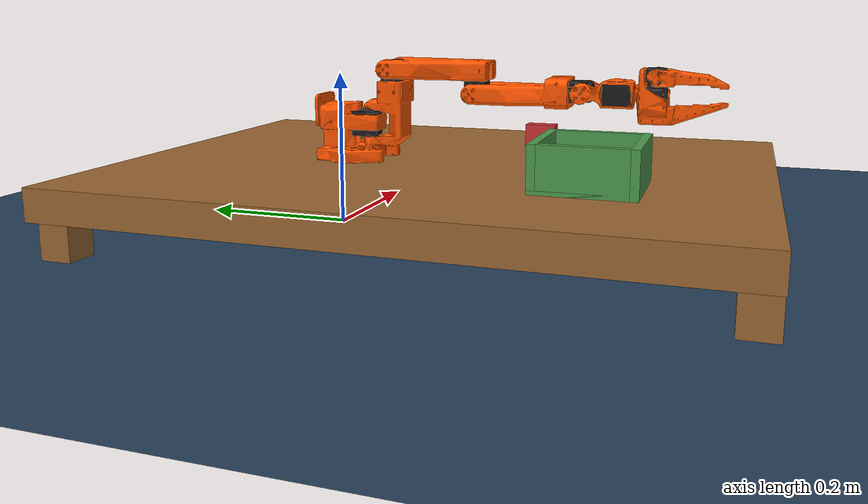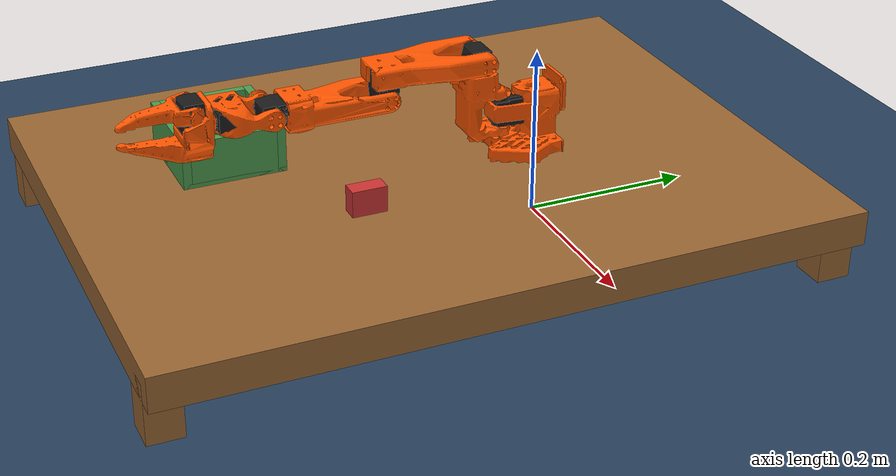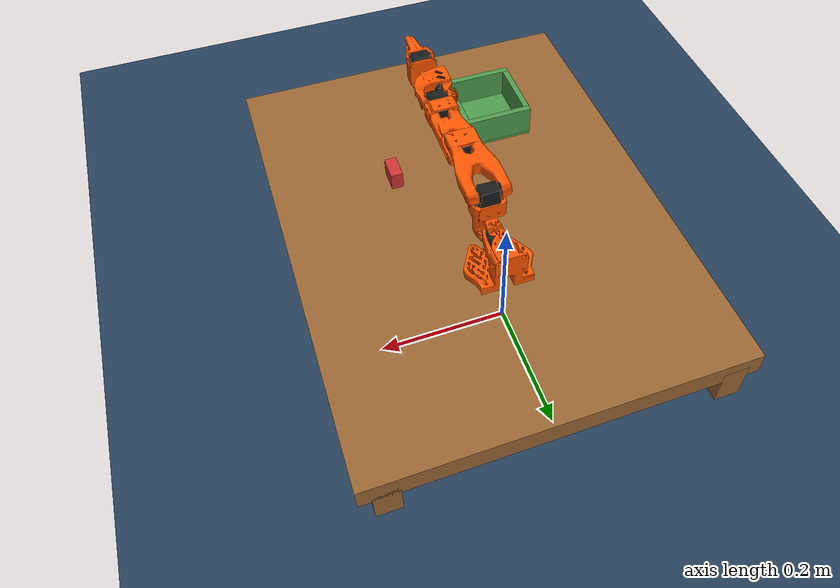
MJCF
<mujoco model="so_arm100 rvt scene">
  <include file="so_arm100.xml"/>

  <statistic center="0 -0.2 0.1" extent="0.4"/>

  <visual>
    <headlight diffuse="0.6 0.6 0.6" ambient="0.3 0.3 0.3" specular="0 0 0"/>
    <rgba haze="0.15 0.25 0.35 1"/>
    <global azimuth="140" elevation="-30"/>
  </visual>

  <asset>
    <texture type="skybox" builtin="gradient" rgb1="0.3 0.5 0.7" rgb2="0 0 0" width="512" height="3072"/>
    <texture type="2d" name="groundplane" builtin="checker" mark="edge" rgb1="0.2 0.3 0.4" rgb2="0.1 0.2 0.3"
      markrgb="0.8 0.8 0.8" width="300" height="300"/>
    <material name="groundplane" texture="groundplane" texuniform="true" texrepeat="5 5" reflectance="0.2"/>

    <material name="table_mat" rgba="0.6 0.4 0.2 1"/>
    <material name="block_mat" rgba="0.8 0.2 0.2 1"/>
    <material name="box_mat" rgba="0.3 0.6 0.3 1"/>
    <material name="target_mat" rgba="0.2 0.2 0.8 0.3"/>
  </asset>

  <worldbody>
    <light pos="0 0 1.5" dir="0 0 -1" directional="true"/>
    <geom name="floor" size="0 0 0.05" type="plane" material="groundplane"/>

    <!-- Workspace center is around (0, -0.25, 0.1). Cameras look at that point. -->
    <!-- RLBench-style cameras: front, left_shoulder, right_shoulder; wrist lives on Fixed_Jaw. -->
    <camera name="front"
            pos="0 -0.85 0.35"
            xyaxes="1 0 0  0 0.45 0.89"
            fovy="45"/>
    <camera name="left_shoulder"
            pos="-0.55 -0.25 0.35"
            xyaxes="0 -1 0  0.4138 0 0.9104"
            fovy="45"/>
    <camera name="right_shoulder"
            pos="0.55 -0.25 0.35"
            xyaxes="0 1 0  -0.4138 0 0.9104"
            fovy="45"/>

    <body name="table" pos="0 0 0">
      <geom name="table_top" type="box" size="0.3 0.4 0.02" pos="0 -0.15 0.07" material="table_mat" mass="10"/>
      <geom name="table_leg1" type="box" size="0.02 0.02 0.035" pos="0.26 -0.53 0.035" material="table_mat"/>
      <geom name="table_leg2" type="box" size="0.02 0.02 0.035" pos="-0.26 -0.53 0.035" material="table_mat"/>
      <geom name="table_leg3" type="box" size="0.02 0.02 0.035" pos="0.26 0.23 0.035" material="table_mat"/>
      <geom name="table_leg4" type="box" size="0.02 0.02 0.035" pos="-0.26 0.23 0.035" material="table_mat"/>
    </body>

    <body name="block" pos="0.1 -0.25 0.115">
      <joint type="free"/>
      <geom name="block_geom" type="box" size="0.01 0.02 0.015" material="block_mat" mass="0.05"
            friction="1 0.005 0.0001" solimp="0.9 0.95 0.001" solref="0.02 1"/>
      <site name="block_site" pos="0 0 0" size="0.005"/>
    </body>

    <body name="box" pos="-0.1 -0.35 0.09">
      <geom name="box_bottom" type="box" size="0.06 0.06 0.005" pos="0 0 0" material="box_mat" mass="0.2"/>
      <geom name="box_wall1" type="box" size="0.06 0.005 0.03" pos="0 0.055 0.025" material="box_mat"/>
      <geom name="box_wall2" type="box" size="0.06 0.005 0.03" pos="0 -0.055 0.025" material="box_mat"/>
      <geom name="box_wall3" type="box" size="0.005 0.05 0.03" pos="0.055 0 0.025" material="box_mat"/>
      <geom name="box_wall4" type="box" size="0.005 0.05 0.03" pos="-0.055 0 0.025" material="box_mat"/>
      <site name="box_center" pos="0 0 0.03" size="0.001" rgba="0 0 0 0"/>
    </body>
  </worldbody>
</mujoco>

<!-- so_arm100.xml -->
<mujoco model="so_arm100">
  <compiler angle="radian" meshdir="assets/"/>

  <option cone="elliptic" impratio="10"/>

  <asset>
    <material name="orange" rgba="1.0 0.331 0.0 1.0" specular="0.1" shininess="0.1"/>
    <material name="black" rgba="0.1 0.1 0.1 1.0" specular="0.1" shininess="0.1"/>

    <mesh name="Base" file="Base.stl"/>
    <mesh name="Base_Motor" file="Base_Motor.stl"/>
    <mesh name="Rotation_Pitch" file="Rotation_Pitch.stl"/>
    <mesh name="Rotation_Pitch_Motor" file="Rotation_Pitch_Motor.stl"/>
    <mesh name="Upper_Arm" file="Upper_Arm.stl"/>
    <mesh name="Upper_Arm_Motor" file="Upper_Arm_Motor.stl"/>
    <mesh name="Lower_Arm" file="Lower_Arm.stl"/>
    <mesh name="Lower_Arm_Motor" file="Lower_Arm_Motor.stl"/>
    <mesh name="Wrist_Pitch_Roll" file="Wrist_Pitch_Roll.stl"/>
    <mesh name="Wrist_Pitch_Roll_Motor" file="Wrist_Pitch_Roll_Motor.stl"/>
    <mesh name="Fixed_Jaw" file="Fixed_Jaw.stl"/>
    <mesh name="Fixed_Jaw_Motor" file="Fixed_Jaw_Motor.stl"/>
    <mesh name="Fixed_Jaw_Collision_1" file="Fixed_Jaw_Collision_1.stl"/>
    <mesh name="Fixed_Jaw_Collision_2" file="Fixed_Jaw_Collision_2.stl"/>
    <mesh name="Moving_Jaw" file="Moving_Jaw.stl"/>
    <mesh name="Moving_Jaw_Collision_1" file="Moving_Jaw_Collision_1.stl"/>
    <mesh name="Moving_Jaw_Collision_2" file="Moving_Jaw_Collision_2.stl"/>
    <mesh name="Moving_Jaw_Collision_3" file="Moving_Jaw_Collision_3.stl"/>
  </asset>

  <default>
    <default class="so_arm100">
      <joint frictionloss="0.1" armature="0.1" damping="5.0"/>
      <position kp="50" forcerange="-35 35" forcelimited="true" ctrlrange="-3.14158 3.14158" ctrllimited="true"/>
      <default class="Rotation">
        <joint axis="0 1 0" range="-2.2 2.2" limited="true"/>
      </default>
      <default class="Pitch">
        <joint axis="1 0 0" range="-3.14158 0.2" limited="true"/>
      </default>
      <default class="Elbow">
        <joint axis="1 0 0" range="0 3.14158" limited="true"/>
      </default>
      <default class="Wrist_Pitch">
        <joint axis="1 0 0" range="-2.0 1.8" limited="true"/>
      </default>
      <default class="Wrist_Roll">
        <joint axis="0 1 0" range="-3.14158 3.14158" limited="true"/>
      </default>
      <default class="Jaw">
        <joint axis="0 0 1" range="-0.2 2.0" limited="true"/>
      </default>
      <default class="visual">
        <geom type="mesh" contype="0" conaffinity="0" density="0" group="2" material="orange"/>
        <default class="motor_visual">
          <geom material="black"/>
        </default>
      </default>
      <default class="collision">
        <geom group="3" type="mesh"/>
        <default class="finger_collision">
          <geom type="box" solimp="2 1 0.01" solref="0.01 1" friction="1 0.005 0.0001"/>
        </default>
      </default>
    </default>
  </default>

  <worldbody>
    <body name="Base" pos="0 0 0.09" childclass="so_arm100">
      <geom type="mesh" mesh="Base" class="visual"/>
      <geom type="mesh" mesh="Base_Motor" class="motor_visual"/>
      <geom type="mesh" mesh="Base" class="collision"/>
      <body name="Rotation_Pitch" pos="0 -0.0452 0.0165" quat="0.707105 0.707108 0 0">
        <inertial pos="-9.07886e-05 0.0590972 0.031089" quat="0.363978 0.441169 -0.623108 0.533504" mass="0.119226"
          diaginertia="5.94278e-05 5.89975e-05 3.13712e-05"/>
        <joint name="Rotation" class="Rotation"/>
        <geom type="mesh" mesh="Rotation_Pitch" class="visual"/>
        <geom type="mesh" mesh="Rotation_Pitch_Motor" class="motor_visual"/>
        <geom type="mesh" mesh="Rotation_Pitch" class="collision"/>
        <body name="Upper_Arm" pos="0 0.1025 0.0306" euler="1.57079 0 0">
          <inertial pos="-1.72052e-05 0.0701802 0.00310545" quat="0.50104 0.498994 -0.493562 0.50632" mass="0.162409"
            diaginertia="0.000213312 0.000167164 7.01522e-05"/>
          <joint name="Pitch" class="Pitch"/>
          <geom type="mesh" mesh="Upper_Arm" class="visual"/>
          <geom type="mesh" mesh="Upper_Arm_Motor" class="motor_visual"/>
          <geom type="mesh" mesh="Upper_Arm" class="collision"/>
          <body name="Lower_Arm" pos="0 0.11257 0.028" euler="-1.57079 0 0">
            <inertial pos="-0.00339604 0.00137796 0.0768007" quat="0.701995 0.0787996 0.0645626 0.704859"
              mass="0.147968" diaginertia="0.000138803 0.000107748 4.84242e-05"/>
            <joint name="Elbow" class="Elbow"/>
            <geom type="mesh" mesh="Lower_Arm" class="visual"/>
            <geom type="mesh" mesh="Lower_Arm_Motor" class="motor_visual"/>
            <geom type="mesh" mesh="Lower_Arm" class="collision"/>
            <body name="Wrist_Pitch_Roll" pos="0 0.0052 0.1349" euler="-1.57079 0 0">
              <inertial pos="-0.00852653 -0.0352279 -2.34622e-05" quat="-0.0522806 0.705235 0.0549524 0.704905"
                mass="0.0661321" diaginertia="3.45403e-05 2.39041e-05 1.94704e-05"/>
              <joint name="Wrist_Pitch" class="Wrist_Pitch"/>
              <geom type="mesh" mesh="Wrist_Pitch_Roll" class="visual"/>
              <geom type="mesh" mesh="Wrist_Pitch_Roll_Motor" class="motor_visual"/>
              <geom type="mesh" mesh="Wrist_Pitch_Roll" class="collision"/>
              <body name="Fixed_Jaw" pos="0 -0.0601 0" euler="0 1.57079 0">
<camera name="gripper_fpv"
        pos="0 -0.02 0.04"
        xyaxes="-1 0 0  0 0 1"
        fovy="90"/>
<camera name="wrist"
        pos="0 -0.02 0.04"
        xyaxes="-1 0 0  0 0 1"
        fovy="60"/>
                <inertial pos="0.00552377 -0.0280167 0.000483583" quat="0.41836 0.620891 -0.350644 0.562599"
                  mass="0.0929859" diaginertia="5.03136e-05 4.64098e-05 2.72961e-05"/>
                <joint name="Wrist_Roll" class="Wrist_Roll"/>
                <geom type="mesh" mesh="Fixed_Jaw" class="visual"/>
                <geom type="mesh" mesh="Fixed_Jaw_Motor" class="motor_visual"/>
                <geom type="mesh" mesh="Fixed_Jaw_Collision_1" class="collision"/>
                <geom type="mesh" mesh="Fixed_Jaw_Collision_2" class="collision"/>
                <geom class="finger_collision" name="fixed_jaw_pad_1" size="0.001 0.005 0.004" pos="0.0089 -0.1014 0"/>
                <geom class="finger_collision" name="fixed_jaw_pad_2" size="0.001 0.005 0.006" pos="0.0109 -0.0914 0"/>
                <geom class="finger_collision" name="fixed_jaw_pad_3" size="0.001 0.01 0.007" pos="0.0126 -0.0768 0"/>
                <geom class="finger_collision" name="fixed_jaw_pad_4" size="0.001 0.01 0.008" pos="0.0143 -0.0572 0"/>
                <body name="Moving_Jaw" pos="-0.0202 -0.0244 0" quat="1.34924e-11 -3.67321e-06 1 -3.67321e-06">
                  <inertial pos="-0.00161745 -0.0303473 0.000449646" quat="0.696562 0.716737 -0.0239844 -0.0227026"
                    mass="0.0202444" diaginertia="1.11265e-05 8.99651e-06 2.99548e-06"/>
                  <joint name="Jaw" class="Jaw"/>
                  <geom type="mesh" mesh="Moving_Jaw" class="visual"/>
                  <geom type="mesh" mesh="Moving_Jaw_Collision_1" class="collision"/>
                  <geom type="mesh" mesh="Moving_Jaw_Collision_2" class="collision"/>
                  <geom type="mesh" mesh="Moving_Jaw_Collision_3" class="collision"/>
                  <geom class="finger_collision" name="moving_jaw_pad_1" size="0.001 0.005 0.004" pos="-0.0113 -0.077 0"/>
                  <geom class="finger_collision" name="moving_jaw_pad_2" size="0.001 0.005 0.006" pos="-0.0093 -0.067 0"/>
                  <geom class="finger_collision" name="moving_jaw_pad_3" size="0.001 0.01 0.006" pos="-0.0073 -0.055 0"/>
                  <geom class="finger_collision" name="moving_jaw_pad_4" size="0.001 0.01 0.008" pos="-0.0073 -0.035 0"/>
                </body>
              </body>
            </body>
          </body>
        </body>
      </body>
    </body>
  </worldbody>

  <actuator>
    <position class="Rotation" name="Rotation" joint="Rotation"/>
    <position class="Pitch" name="Pitch" joint="Pitch"/>
    <position class="Elbow" name="Elbow" joint="Elbow"/>
    <position class="Wrist_Pitch" name="Wrist_Pitch" joint="Wrist_Pitch"/>
    <position class="Wrist_Roll" name="Wrist_Roll" joint="Wrist_Roll"/>
    <position class="Jaw" name="Jaw" joint="Jaw"/>
  </actuator>

  <contact>
    <exclude body1="Base" body2="Rotation_Pitch"/>
  </contact>

  <keyframe>
    <key name="home" qpos="0 -1.57079 1.57079 1.57079 -1.57079 0 0.1 -0.25 0.115 1 0 0 0" ctrl="0 -1.57079 1.57079 1.57079 -1.57079 0"/>
  </keyframe>
</mujoco>
